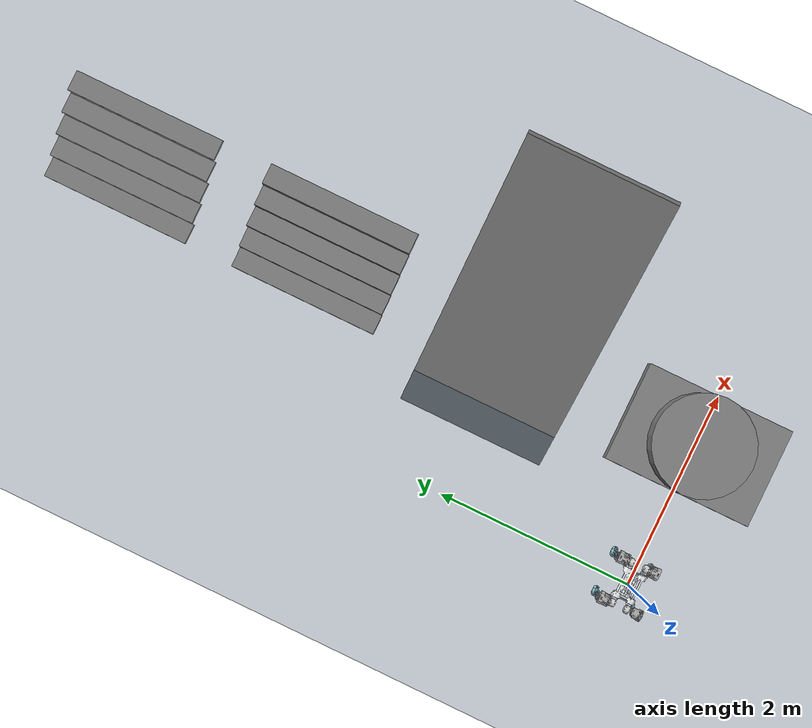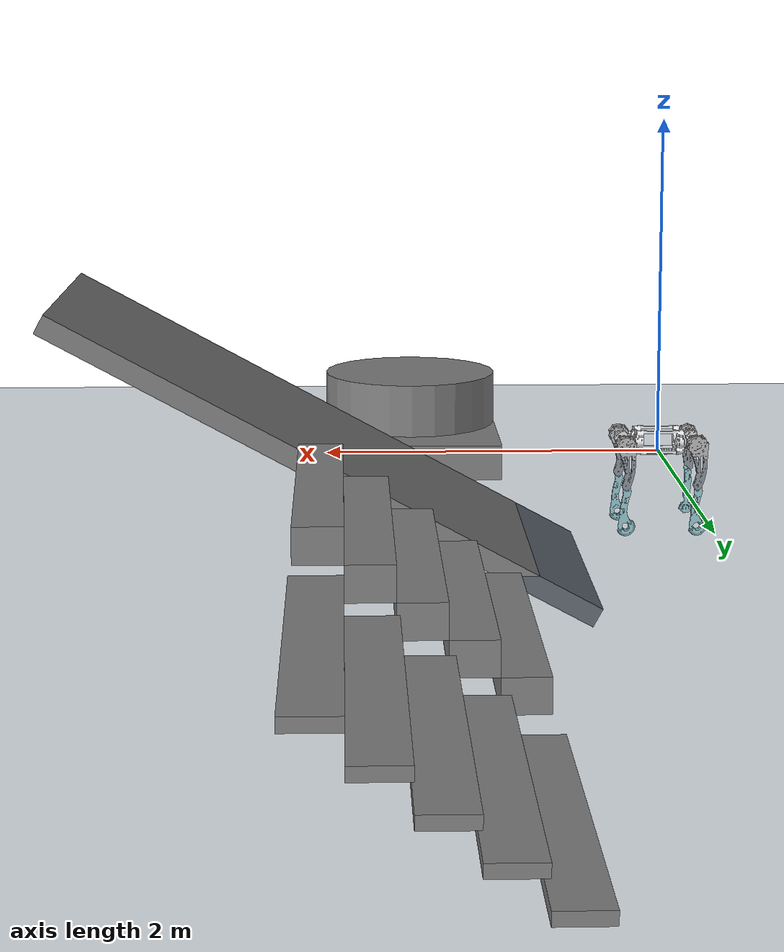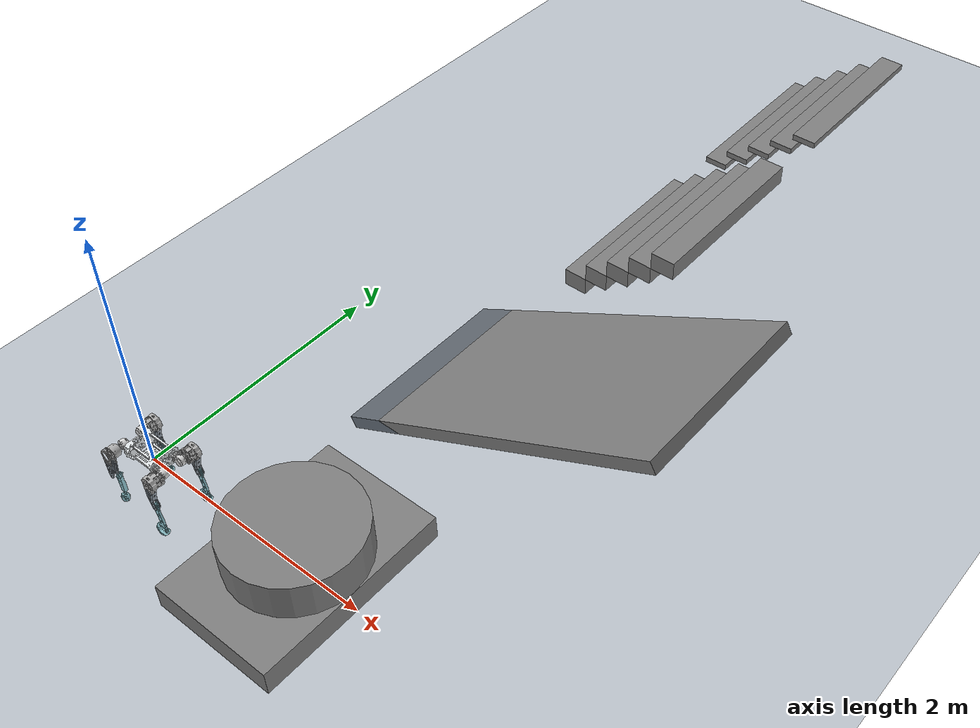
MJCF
.
<mujoco model="EVA02 terrain scene">
    <include file="EVA02.xml" />

    <statistic center="0 0 0.1" extent="1.2" />

    <visual>
        <headlight diffuse="0.6 0.6 0.6" ambient="0.3 0.3 0.3" specular="0 0 0" />
        <rgba haze="0.15 0.25 0.35 1" />
        <global azimuth="-130" elevation="-20" />
    </visual>

    <asset>
        <texture type="skybox" builtin="gradient" rgb1="0.3 0.5 0.7" rgb2="0 0 0" width="512"
            height="3072" />
        <texture type="2d" name="groundplane" builtin="checker" mark="edge" rgb1="0.2 0.3 0.4"
            rgb2="0.1 0.2 0.3"
            markrgb="0.8 0.8 0.8" width="300" height="300" />
        <material name="groundplane" texture="groundplane" texuniform="true" texrepeat="5 5"
            reflectance="0.2" />
    </asset>

    <worldbody>
        <light pos="0 0 1.5" dir="0 0 -1" directional="true" />
        <geom name="floor" size="0 0 0.05" type="plane" material="groundplane" />

        <geom pos="1.5 0.0 0.1" type="box" size="0.5 0.75 0.1" quat="1 0 0 0" />
        <geom pos="1.5 0.0 0.25" type="cylinder" size="0.5 0.25 0.25" quat="1 0 0 0" />

        <geom pos="2.0 2.0 0.5" type="box" size="1.5 0.75 0.05"
            quat="0.968912421710645 0 -0.24740395925452296 0" />

        <geom pos="1.2 4.0 0.075" type="box" size="0.1 0.75 0.075" quat="1 0 0 0" />
        <geom pos="1.4 4.0 0.225" type="box" size="0.1 0.75 0.075" quat="1 0 0 0" />
        <geom pos="1.6 4.0 0.375" type="box" size="0.1 0.75 0.075" quat="1 0 0 0" />
        <geom pos="1.8 4.0 0.525" type="box" size="0.1 0.75 0.075" quat="1 0 0 0" />
        <geom pos="2.0 4.0 0.675" type="box" size="0.1 0.75 0.075" quat="1 0 0 0" />

        <geom pos="1.2 6.0 0.075" type="box" size="0.1 0.75 0.025" quat="1 0 0 0" />
        <geom pos="1.4 6.0 0.225" type="box" size="0.1 0.75 0.025" quat="1 0 0 0" />
        <geom pos="1.6 6.0 0.375" type="box" size="0.1 0.75 0.025" quat="1 0 0 0" />
        <geom pos="1.8 6.0 0.525" type="box" size="0.1 0.75 0.025" quat="1 0 0 0" />
        <geom pos="2.0 6.0 0.675" type="box" size="0.1 0.75 0.025" quat="1 0 0 0" />
    </worldbody>
</mujoco>

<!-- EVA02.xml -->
<mujoco model="EVA02">
  <compiler angle="radian" meshdir="assets/" autolimits="true" />

  <option cone="elliptic" impratio="100" />
  <default>
    <default class="EVA02">
      <geom friction="0.4" margin="0.001" condim="1" />
      <joint axis="0 1 0" damping="0.1" armature="0.01" frictionloss="0.2" />
      <motor ctrlrange="-17 17" />
      <default class="abduction">
        <joint axis="1 0 0" range="-1.0472 1.0472" />
      </default>
      <default class="hip">
        <default class="front_hip">
          <joint range="-1.5708 3.4907" />
        </default>
        <default class="back_hip">
          <joint range="-0.5236 4.5379" />
        </default>
      </default>
      <default class="knee">
        <joint range="-2.7227 -0.83776" />
        <motor ctrlrange="-60 60" />
      </default>
      <default class="visual">
        <geom type="mesh" contype="0" conaffinity="0" group="2" />
      </default>
      <default class="collision">
        <geom group="3" />
      </default>
    </default>
  </default>

  <asset>
    <mesh name="body" file="body.STL" />
    <mesh name="FL_hip" file="FL_hip.STL" />
    <mesh name="FL_thigh" file="FL_thigh.STL" />
    <mesh name="FL_calf" file="FL_calf.STL" />
    <mesh name="FR_hip" file="FR_hip.STL" />
    <mesh name="FR_thigh" file="FR_thigh.STL" />
    <mesh name="FR_calf" file="FR_calf.STL" />
    <mesh name="RL_hip" file="RL_hip.STL" />
    <mesh name="RL_thigh" file="RL_thigh.STL" />
    <mesh name="RL_calf" file="RL_calf.STL" />
    <mesh name="RR_hip" file="RR_hip.STL" />
    <mesh name="RR_thigh" file="RR_thigh.STL" />
    <mesh name="RR_calf" file="RR_calf.STL" />
    <material name="base_mat" rgba="0.898 0.9137 0.9255 1" specular="0" />
    <material name="FL_hip_mat" rgba="0.851 0.851 0.851 1" specular="0" />
    <material name="FL_thigh_mat" rgba="0.6941 0.6941 0.6941 1" specular="0" />
    <material name="FL_calf_mat" rgba="0.749 1 1 1" specular="0" />
    <material name="FR_hip_mat" rgba="0.851 0.851 0.851 1" specular="0" />
    <material name="FR_thigh_mat" rgba="0.6941 0.6941 0.6941 1" specular="0" />
    <material name="FR_calf_mat" rgba="0.749 1 1 1" specular="0" />
    <material name="RL_hip_mat" rgba="0.851 0.851 0.851 1" specular="0" />
    <material name="RL_thigh_mat" rgba="0.6941 0.6941 0.6941 1" specular="0" />
    <material name="RL_calf_mat" rgba="0.749 1 1 1" specular="0" />
    <material name="RR_hip_mat" rgba="0.851 0.851 0.851 1" specular="0" />
    <material name="RR_thigh_mat" rgba="0.6941 0.6941 0.6941 1" specular="0" />
    <material name="RR_calf_mat" rgba="0.749 1 1 1" specular="0" />
  </asset>

  <worldbody>
    <body name="base" pos="0 0 0" childclass="EVA02">

      <inertial pos="0 0 0.07" mass="6.400"
        fullinertia="0.043495 0.108393 0.133525 0.001242 0.000001 -0.000546" />
      <freejoint />
      <geom pos="0 0 0" group="1" contype="0" conaffinity="0" material="base_mat" type="mesh"
        mesh="body" />
      <geom mesh="body" rgba="0.9373 0.2667 0.2667 1" class="collision" />
      <site name="imu" pos="0.000003 0.001512 0.065154" />

      <body name="FL_hip" pos="0.21385 0.075 0.0705">
        <inertial pos="-0.009402 -0.000896 0.000833" mass="0.56"
          fullinertia="0.0004072 0.0006566 0.0005565 -0.0000001 -0.0000008 0.0000002" />
        <joint name="FL_hip_joint" class="abduction" />
        <geom mesh="FL_hip" material="FL_hip_mat" class="visual" />
        <geom mesh="FL_hip" rgba="0.9373 0.2667 0.2667 1" class="collision" />
        <body name="FL_thigh" pos="0 0.1201 0">
          <inertial pos="-0.001832 -0.031623 -0.031953" mass="1.405"
            fullinertia="0.0094509 0.0093689 0.0021676 0.0000864 -0.0002393 0.0014612" />
          <joint name="FL_thigh_joint" class="front_hip" />
          <geom mesh="FL_thigh" material="FL_thigh_mat" class="visual" />
          <geom mesh="FL_thigh" rgba="0.9373 0.2667 0.2667 1" class="collision" />
          <body name="FL_calf" pos="0 0 -0.24">
            <inertial pos="-0.002557 -0.000029 -0.186331" mass="0.435"
              fullinertia="0.0047191 0.0049099 0.0002999 0.0000002 -0.0001592 -0.0000039" />
            <joint name="FL_calf_joint" class="knee" />
            <geom mesh="FL_calf" material="FL_calf_mat" class="visual" />
            <geom mesh="FL_calf" rgba="0.9373 0.2667 0.2667 1" class="collision" />
          </body>
        </body>
      </body>

      <body name="FR_hip" pos="0.21385 -0.075 0.0705">
        <inertial pos="-0.009402 0.000896 0.000833" mass="0.56"
          fullinertia="0.0004072 0.0006566 0.0005565 0.0000001 -0.0000008 -0.0000002" />
        <joint name="FR_hip_joint" class="abduction" />
        <geom mesh="FR_hip" material="FR_hip_mat" class="visual" />
        <geom mesh="FR_hip" rgba="0.9373 0.2667 0.2667 1" class="collision" />
        <body name="FR_thigh" pos="0 -0.1201 0">
          <inertial pos="-0.001832 0.031623 -0.031953" mass="1.405"
            fullinertia="0.0094509 0.0093689 0.0021676 -0.0000864 -0.0002393 -0.0014612" />
          <joint name="FR_thigh_joint" class="front_hip" />
          <geom mesh="FR_thigh" material="FR_thigh_mat" class="visual" />
          <geom mesh="FR_thigh" rgba="0.9373 0.2667 0.2667 1" class="collision" />
          <body name="FR_calf" pos="0 0 -0.24">
            <inertial pos="-0.002557 0.000029 -0.186331" mass="0.435"
              fullinertia="0.0047191 0.0049099 0.0002999 -0.0000002 -0.0001592 0.0000039" />
            <joint name="FR_calf_joint" class="knee" />
            <geom mesh="FR_calf" material="FR_calf_mat" class="visual" />
            <geom mesh="FR_calf" rgba="0.9373 0.2667 0.2667 1" class="collision" />
          </body>
        </body>
      </body>

      <body name="RL_hip" pos="-0.21385 0.075 0.0705">
        <inertial pos="0.009402 -0.000896 0.000833" mass="0.56"
          fullinertia="0.0004072 0.0006566 0.0005565 0.0000001 0.0000008 0.0000002" />
        <joint name="RL_hip_joint" class="abduction" />
        <geom mesh="RL_hip" material="RL_hip_mat" class="visual" />
        <geom mesh="RL_hip" rgba="0.9373 0.2667 0.2667 1" class="collision" />
        <body name="RL_thigh" pos="0 0.1201 0">
          <inertial pos="0.001832 0.031623 -0.031953" mass="1.405"
            fullinertia="0.0094509 0.0093689 0.0021676 -0.0000864 0.0002393 0.0014612" />
          <joint name="RL_thigh_joint" class="back_hip" />
          <geom mesh="RL_thigh" material="RL_thigh_mat" class="visual" />
          <geom mesh="RL_thigh" rgba="0.9373 0.2667 0.2667 1" class="collision" />
          <body name="RL_calf" pos="0 0 -0.24">
            <inertial pos="0.002557 -0.000029 -0.186331" mass="0.435"
              fullinertia="0.0047191 0.0049099 0.0002999 -0.0000002 0.0001592 -0.0000039" />
            <joint name="RL_calf_joint" class="knee" />
            <geom mesh="RL_calf" material="RL_calf_mat" class="visual" />
            <geom mesh="RL_calf" rgba="0.9373 0.2667 0.2667 1" class="collision" />
          </body>
        </body>
      </body>

      <body name="RR_hip" pos="-0.21385 -0.075 0.0705">
        <inertial pos="0.009402 0.000896 0.000833" mass="0.56"
          fullinertia="0.0004072 0.0006566 0.0005565 -0.0000001 0.0000008 -0.0000002" />
        <joint name="RR_hip_joint" class="abduction" />
        <geom mesh="RR_hip" material="RR_hip_mat" class="visual" />
        <geom mesh="RR_hip" rgba="0.9373 0.2667 0.2667 1" class="collision" />
        <body name="RR_thigh" pos="0 -0.1201 0">
          <inertial pos="0.001832 0.031623 -0.031953" mass="1.405"
            fullinertia="0.0094509 0.0093689 0.0021676 0.0000864 0.0002393 -0.0014612" />
          <joint name="RR_thigh_joint" class="back_hip" />
          <geom mesh="RR_thigh" material="RR_thigh_mat" class="visual" />
          <geom mesh="RR_thigh" rgba="0.9373 0.2667 0.2667 1" class="collision" />
          <body name="RR_calf" pos="0 0 -0.24">
            <inertial pos="0.002557 0.000029 -0.186331" mass="0.435"
              fullinertia="0.0047191 0.0049099 0.0002999 0.0000002 0.0001592 0.0000039" />
            <joint name="RR_calf_joint" class="knee" />
            <geom mesh="RR_calf" material="RR_calf_mat" class="visual" />
            <geom mesh="RR_calf" rgba="0.9373 0.2667 0.2667 1" class="collision" />
          </body>
        </body>
      </body>
    </body>
  </worldbody>

  <actuator>
    <motor class="abduction" name="FR_hip" joint="FR_hip_joint" />
    <motor class="hip" name="FR_thigh" joint="FR_thigh_joint" />
    <motor class="knee" name="FR_calf" joint="FR_calf_joint" />
    <motor class="abduction" name="FL_hip" joint="FL_hip_joint" />
    <motor class="hip" name="FL_thigh" joint="FL_thigh_joint" />
    <motor class="knee" name="FL_calf" joint="FL_calf_joint" />
    <motor class="abduction" name="RR_hip" joint="RR_hip_joint" />
    <motor class="hip" name="RR_thigh" joint="RR_thigh_joint" />
    <motor class="knee" name="RR_calf" joint="RR_calf_joint" />
    <motor class="abduction" name="RL_hip" joint="RL_hip_joint" />
    <motor class="hip" name="RL_thigh" joint="RL_thigh_joint" />
    <motor class="knee" name="RL_calf" joint="RL_calf_joint" />
  </actuator>

  <sensor>
    <jointpos name="FR_hip_pos" joint="FR_hip_joint" />
    <jointpos name="FR_thigh_pos" joint="FR_thigh_joint" />
    <jointpos name="FR_calf_pos" joint="FR_calf_joint" />
    <jointpos name="FL_hip_pos" joint="FL_hip_joint" />
    <jointpos name="FL_thigh_pos" joint="FL_thigh_joint" />
    <jointpos name="FL_calf_pos" joint="FL_calf_joint" />
    <jointpos name="RR_hip_pos" joint="RR_hip_joint" />
    <jointpos name="RR_thigh_pos" joint="RR_thigh_joint" />
    <jointpos name="RR_calf_pos" joint="RR_calf_joint" />
    <jointpos name="RL_hip_pos" joint="RL_hip_joint" />
    <jointpos name="RL_thigh_pos" joint="RL_thigh_joint" />
    <jointpos name="RL_calf_pos" joint="RL_calf_joint" />

    <jointvel name="FR_hip_vel" joint="FR_hip_joint" />
    <jointvel name="FR_thigh_vel" joint="FR_thigh_joint" />
    <jointvel name="FR_calf_vel" joint="FR_calf_joint" />
    <jointvel name="FL_hip_vel" joint="FL_hip_joint" />
    <jointvel name="FL_thigh_vel" joint="FL_thigh_joint" />
    <jointvel name="FL_calf_vel" joint="FL_calf_joint" />
    <jointvel name="RR_hip_vel" joint="RR_hip_joint" />
    <jointvel name="RR_thigh_vel" joint="RR_thigh_joint" />
    <jointvel name="RR_calf_vel" joint="RR_calf_joint" />
    <jointvel name="RL_hip_vel" joint="RL_hip_joint" />
    <jointvel name="RL_thigh_vel" joint="RL_thigh_joint" />
    <jointvel name="RL_calf_vel" joint="RL_calf_joint" />

    <jointactuatorfrc name="FR_hip_torque" joint="FR_hip_joint" noise="0.01" />
    <jointactuatorfrc name="FR_thigh_torque" joint="FR_thigh_joint" noise="0.01" />
    <jointactuatorfrc name="FR_calf_torque" joint="FR_calf_joint" noise="0.01" />
    <jointactuatorfrc name="FL_hip_torque" joint="FL_hip_joint" noise="0.01" />
    <jointactuatorfrc name="FL_thigh_torque" joint="FL_thigh_joint" noise="0.01" />
    <jointactuatorfrc name="FL_calf_torque" joint="FL_calf_joint" noise="0.01" />
    <jointactuatorfrc name="RR_hip_torque" joint="RR_hip_joint" noise="0.01" />
    <jointactuatorfrc name="RR_thigh_torque" joint="RR_thigh_joint" noise="0.01" />
    <jointactuatorfrc name="RR_calf_torque" joint="RR_calf_joint" noise="0.01" />
    <jointactuatorfrc name="RL_hip_torque" joint="RL_hip_joint" noise="0.01" />
    <jointactuatorfrc name="RL_thigh_torque" joint="RL_thigh_joint" noise="0.01" />
    <jointactuatorfrc name="RL_calf_torque" joint="RL_calf_joint" noise="0.01" />

    <framequat name="imu_quat" objtype="site" objname="imu" />
    <gyro name="imu_gyro" site="imu" />
    <accelerometer name="imu_acc" site="imu" />

    <framepos name="frame_pos" objtype="site" objname="imu" />
    <framelinvel name="frame_vel" objtype="site" objname="imu" />
  </sensor>

  <keyframe>
    <key name="home" qpos="0 0 0.27 1 0 0 0 0 0.9 -1.8 0 0.9 -1.8 0 0.9 -1.8 0 0.9 -1.8"
      ctrl="0 0.9 -1.8 0 0.9 -1.8 0 0.9 -1.8 0 0.9 -1.8" />
  </keyframe>

</mujoco>
